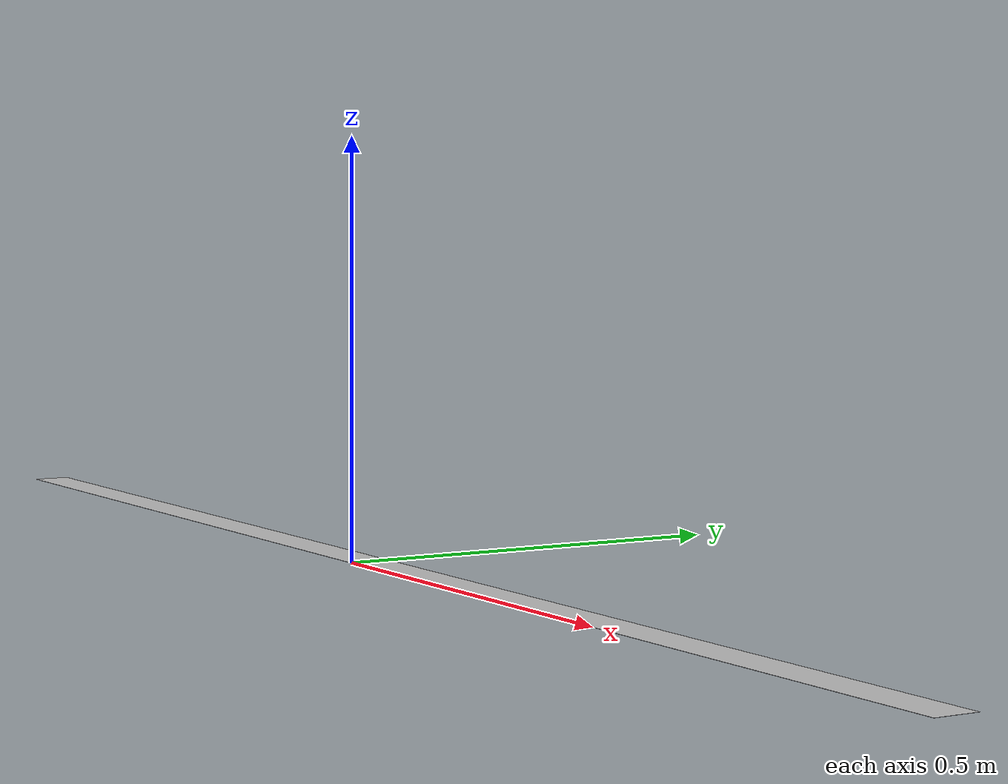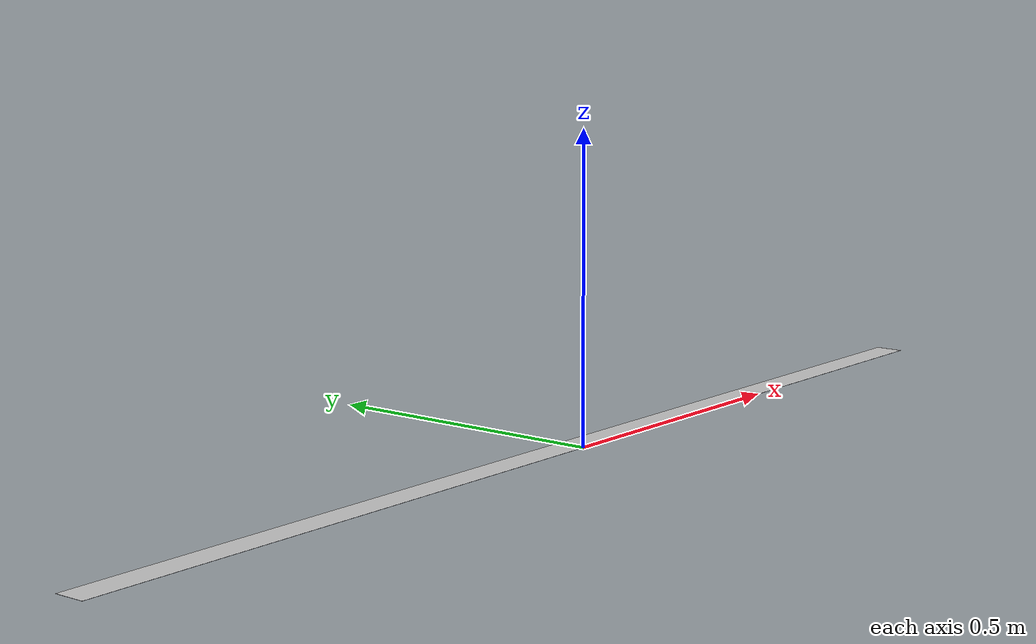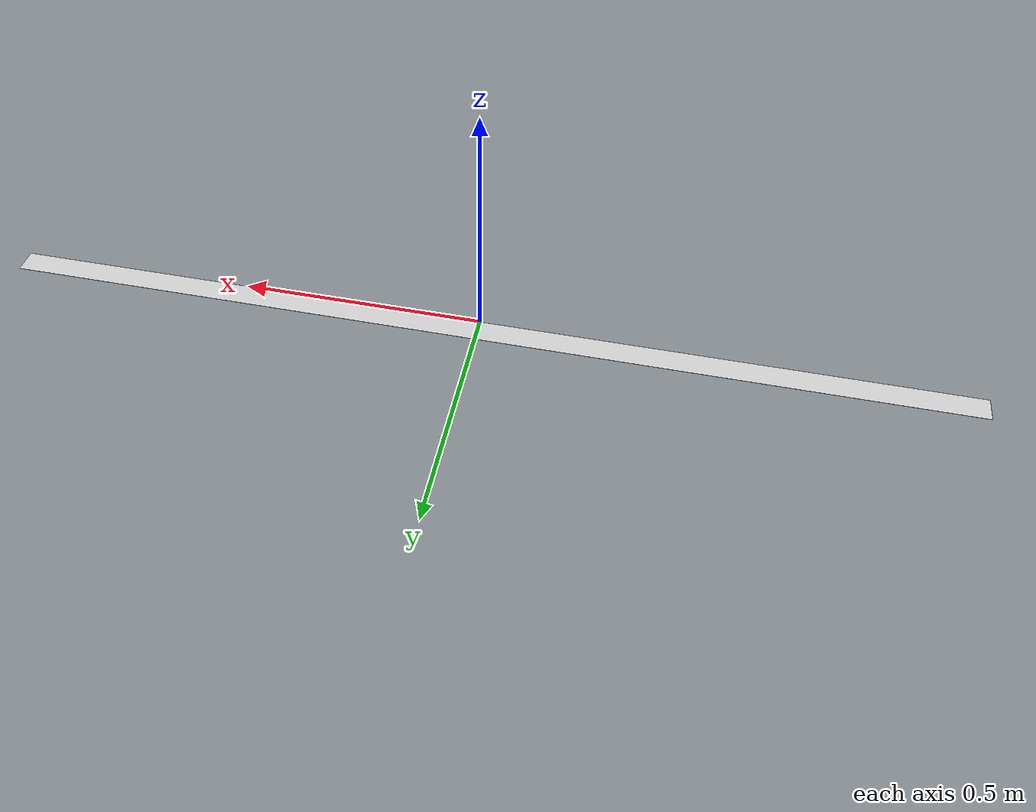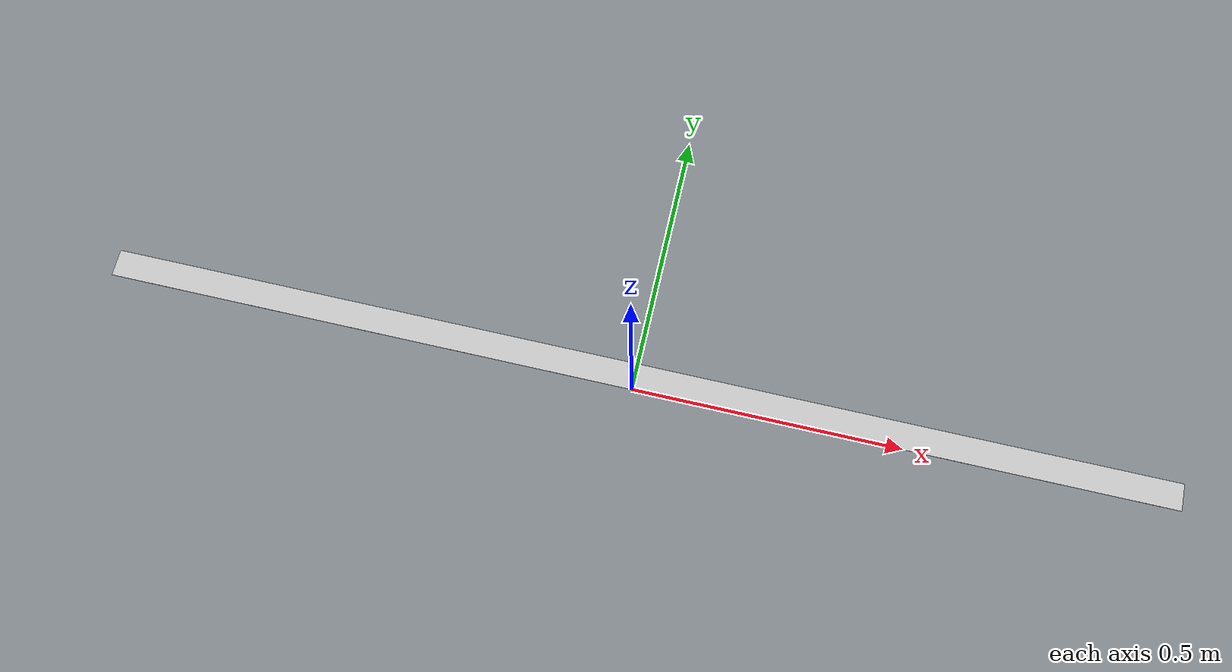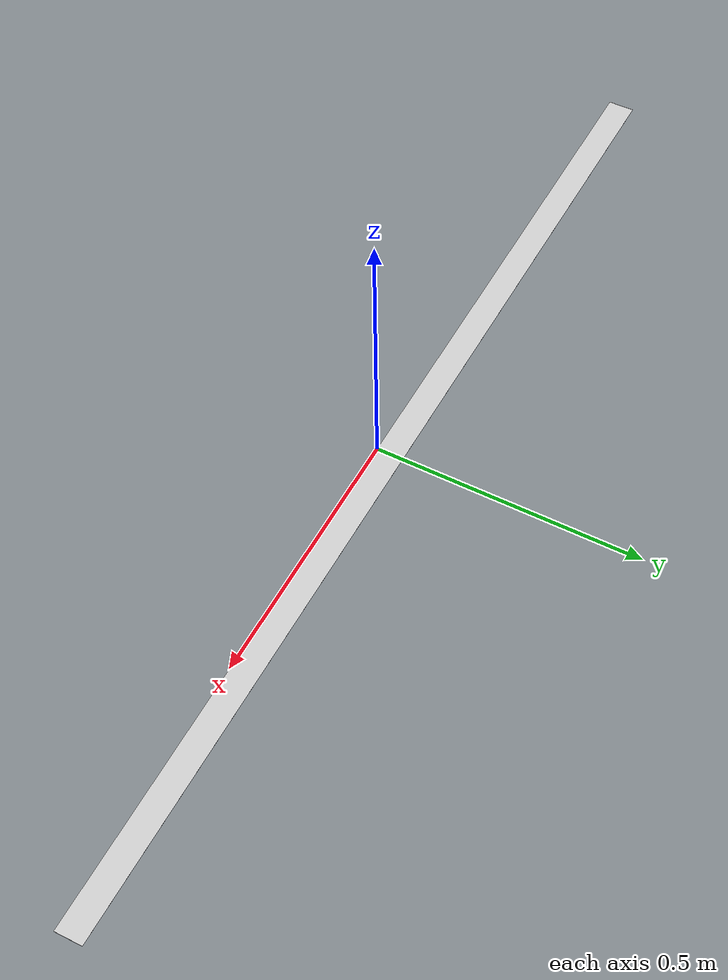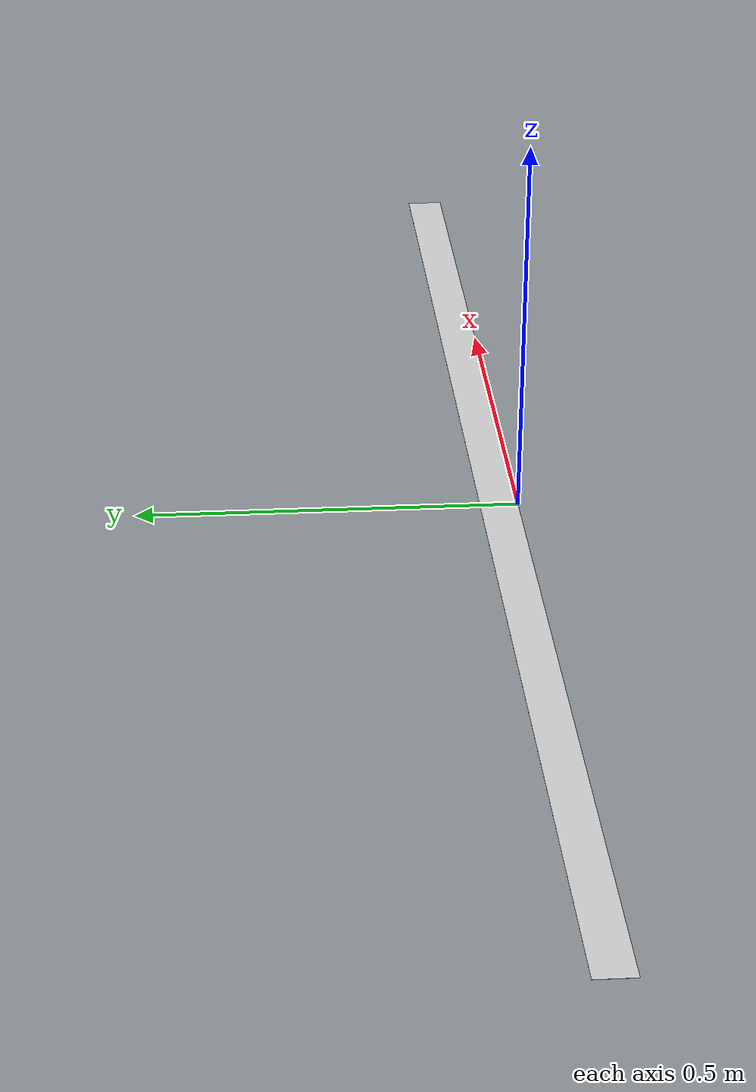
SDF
<?xml version="1.0" ?>
<sdf version="1.5">
  <model name="2m Tape">
    <static>true</static>
    <link name="link">
      <inertial>
      <pose>0 0 0.0175 0 0 0</pose>
        <mass>10</mass>
	  <inertia>
	    <ixx>1</ixx>
	    <ixy>0</ixy>
	    <ixz>0</ixz>
	    <iyy>1</iyy>
	    <iyz>0</iyz>
	    <izz>1</izz>
	  </inertia>
      </inertial>
      <collision name="collision">
        <pose>0 0 0.0175 0 0 0</pose>
        <geometry>
          <mesh>
          <uri>model://2mTape/2mTape.dae</uri>
          </mesh>
        </geometry>
      </collision>
      <visual name="visual">
        <geometry>
          <mesh>
          <uri>model://2mTape/2mTape.dae</uri>
          </mesh>
        </geometry>
      </visual>
    </link>
  </model>
</sdf>
